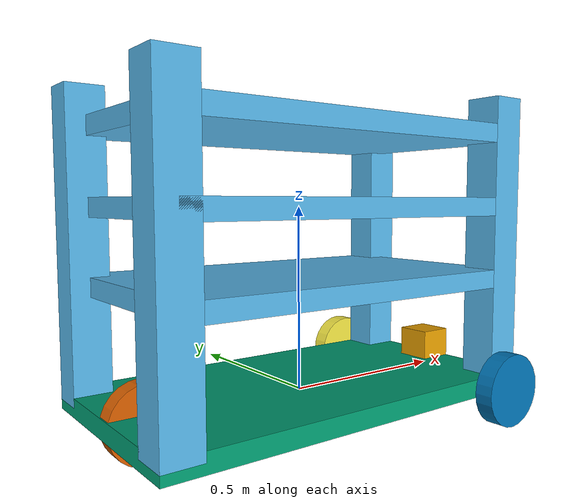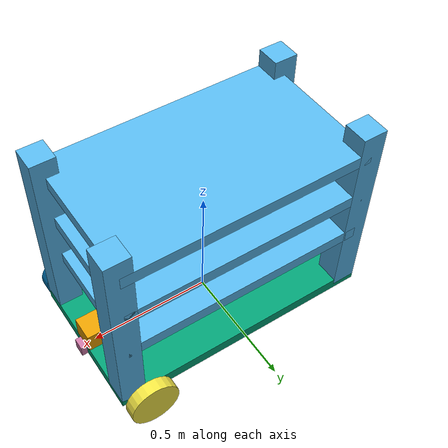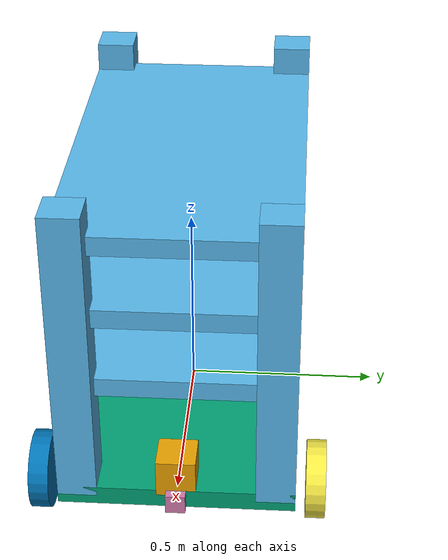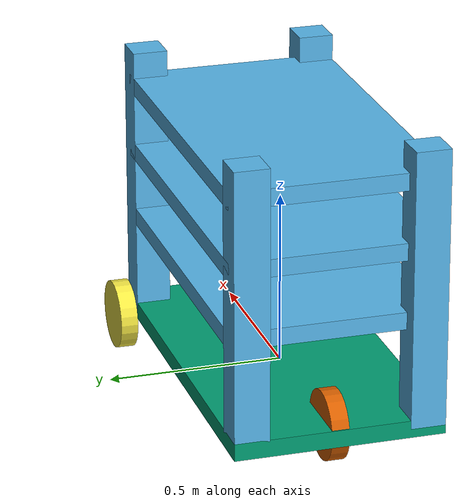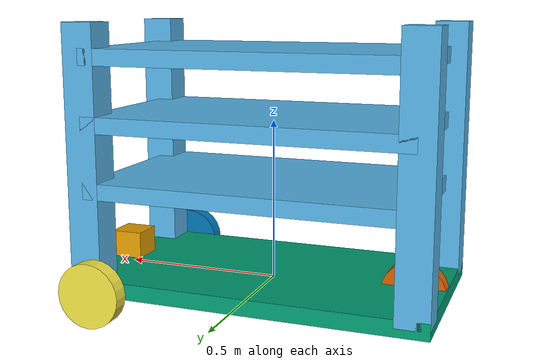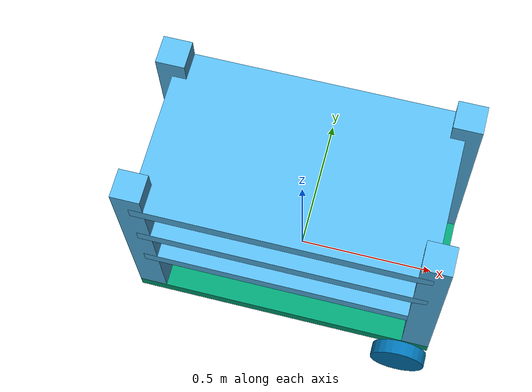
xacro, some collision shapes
<?xml version='1.0'?>

<robot name="my_robot" xmlns:xacro="http://www.ros.org/wiki/xacro">

  <xacro:include filename="$(find my_robot)/urdf/my_robot.gazebo" />
  <link name="robot_footprint"></link>

  <joint name="robot_footprint_joint" type="fixed">
    <origin xyz="0 0 0" rpy="0 0 0" />
    <parent link="robot_footprint"/>
    <child link="chassis" />
  </joint>

  <joint name="robot_footprint_joint2" type="fixed">
    <origin xyz="0 0 0" rpy="0 0 0" />
    <parent link="robot_footprint"/>
    <child link="cart_body" />
  </joint>

  <link name="cart_body">
    <pose> 0 0 0 0 0 0 </pose>
    <inertial>
      <mass value="5.0"/>
      <origin xyz="0 0 0" rpy=" 0 0 0"/>
      <inertia
          ixx="0.5" ixy="0" ixz="0"
          iyy="0.3" iyz="0"
          izz="0.4"
      />
    </inertial>
    <collision name='cart_collision'>
      <origin xyz="0 0 0.4" rpy=" 0 0 0"/>
      <geometry>
        <box size="1 0.6 0.8"/>
      </geometry>
    </collision>

    <visual name='cart_visual_button'>
      <origin xyz="0 0 0.3" rpy=" 0 0 0"/>
      <geometry>
        <box size="1 0.6 0.05"/>
      </geometry>
      <origin xyz="-0.5 -0.25 0" rpy=" 0 0 0"/>
    </visual>

    <visual name='cart_visual_middle'>
      <origin xyz="0 0 0.5" rpy=" 0 0 0"/>
      <geometry>
        <box size="1 0.6 0.05"/>
      </geometry>
    </visual>

    <visual name='cart_visual_top'>
      <origin xyz="0 0 0.7" rpy=" 0 0 0"/>
      <geometry>
        <box size="1 0.6 0.05"/>
      </geometry>
    </visual>

    <visual name='cart_visual_fl'>
      <origin xyz="0.5 0.25 0.4" rpy=" 0 0 0"/>
      <geometry>
        <box size="0.1 0.1 0.8"/>
      </geometry>
    </visual>

    <visual name='cart_visual_bl'>
      <origin xyz="-0.5 0.25 0.4" rpy=" 0 0 0"/>
      <geometry>
        <box size="0.1 0.1 0.8"/>
      </geometry>
    </visual>

    <visual name='cart_visual_fr'>
      <origin xyz="0.5 -0.25 0.4" rpy=" 0 0 0"/>
      <geometry>
        <box size="0.1 0.1 0.8"/>
      </geometry>
    </visual>

    <visual name='cart_visual_br'>
      <origin xyz="-0.5 -0.25 0.4" rpy=" 0 0 0"/>
      <geometry>
        <box size="0.1 0.1 0.8"/>
      </geometry>
    </visual>

  </link>

  <link name='chassis'>
    <pose>0 0 0.1 0 0 0</pose>

    <inertial>
      <mass value="5.0"/>
      <origin xyz="0.0 0 0" rpy=" 0 0 0"/>
      <inertia
          ixx="0.55" ixy="0" ixz="0"
          iyy="0.3" iyz="0"
          izz="0.025"
      />
    </inertial>

    <collision name='collision'>
      <origin xyz="0 0 0" rpy=" 0 0 0"/>
      <geometry>
        <box size="1.1 0.6 0.05"/>
      </geometry>
    </collision>

    <visual name='chassis_visual'>
      <origin xyz="0 0 0" rpy=" 0 0 0"/>
      <geometry>
        <box size="1.1 0.6 0.05"/>
      </geometry>
    </visual>

  </link>

  <link name='left_wheel'>

    <inertial>
      <mass value="0.2"/>
      <origin xyz="0.0 0 0" rpy=" 0 1.5707 1.5707"/>
      <inertia
          ixx="0.05" ixy="0" ixz="0"
          iyy="0.025" iyz="0"
          izz="0.05"
      />
    </inertial>

    <collision name='left_whee_collision'>
      <origin xyz="0 0 0" rpy="0 1.5707 1.5707"/>
      <geometry>
        <cylinder  radius="0.1" length="0.05"/>
      </geometry>
      <surface>
          <friction>
            <ode>
              <mu>1</mu>
              <mu2>1</mu2>
              <slip1>0.5</slip1>
              <slip2>0</slip2>
            </ode>
          </friction>
        </surface>
    </collision>

    <visual name='left_wheel_visual'>
      <origin xyz="0 0 0" rpy=" 0 1.5707 1.5707"/>
      <geometry>
        <cylinder  radius="0.1" length="0.05"/>
      </geometry>
    </visual>

  </link>

<link name='right_wheel'>

    <inertial>
      <mass value="0.2"/>
      <origin xyz="0.0 0 0" rpy=" 0 1.5707 1.5707"/>
      <inertia
          ixx="0.05" ixy="0" ixz="0"
          iyy="0.025" iyz="0"
          izz="0.05"
      />
    </inertial>

    <collision name='right_wheel_collision'>
      <origin xyz="0 0 0" rpy="0 1.5707 1.5707"/>
      <geometry>
        <cylinder  radius="0.1" length="0.05"/>
      </geometry>
      <surface>
          <friction>
            <ode>
              <mu>1</mu>
              <mu2>1</mu2>
              <slip1>0.5</slip1>
              <slip2>0</slip2>
            </ode>
          </friction>
        </surface>
    </collision>

    <visual name='right_wheel_visual'>
      <origin xyz="0 0 0" rpy=" 0 1.5707 1.5707"/>
      <geometry>
        <cylinder  radius="0.1" length="0.05"/>
      </geometry>
    </visual>

  </link>

<link name='back_left_wheel'>

    <inertial>
      <mass value="0.2"/>
      <origin xyz="0.0 0 0" rpy=" 0 1.5707 1.5707"/>
      <inertia
          ixx="0.05" ixy="0" ixz="0"
          iyy="0.025" iyz="0"
          izz="0.05"
      />
    </inertial>

    <collision name='back_left_whee_collision'>
      <origin xyz="0 0 0" rpy="0 1.5707 1.5707"/>
      <geometry>
        <cylinder  radius="0.1" length="0.05"/>
      </geometry>
      <surface>
          <friction>
            <ode>
              <mu>1</mu>
              <mu2>1</mu2>
              <slip1>0.5</slip1>
              <slip2>0</slip2>
            </ode>
          </friction>
        </surface>
    </collision>

    <visual name='back_left_wheel_visual'>
      <origin xyz="0 0 0" rpy=" 0 1.5707 1.5707"/>
      <geometry>
        <cylinder  radius="0.1" length="0.05"/>
      </geometry>
    </visual>

  </link>

  <joint type="continuous" name="left_wheel_hinge">
    <origin xyz="0.45 0.35 0" rpy="0 0 0"/>
    <child link="left_wheel"/>
    <parent link="chassis"/>
    <axis xyz="0 1 0" rpy="0 0 0"/>
    <limit effort="10000" velocity="1000"/>
    <dynamics damping="1.0" friction="1.0"/>
  </joint>

  <joint type="continuous" name="right_wheel_hinge">
    <origin xyz="0.45 -0.35 0" rpy="0 0 0"/>
    <child link="right_wheel"/>
    <parent link="chassis"/>
    <axis xyz="0 1 0" rpy="0 0 0"/>
    <limit effort="10000" velocity="1000"/>
    <dynamics damping="1.0" friction="1.0"/>
  </joint>

  <joint type="continuous" name="back_left_wheel_hinge">
    <origin xyz="-0.45 0.0 0" rpy="0 0 0"/>
    <child link="back_left_wheel"/>
    <parent link="chassis"/>
    <axis xyz="0 1 0" rpy="0 0 0"/>
    <limit effort="10000" velocity="1000"/>
    <dynamics damping="1.0" friction="1.0"/>
  </joint>

  <link name='camera'>

    <inertial>
      <mass value="0.1"/>
      <origin xyz="0.0 0 0" rpy=" 0 0 0"/>
      <box_inertia
      m="0.1" x="0.05" y="0.05" z="0.05"
      />
      <inertia
          ixx="1e-6" ixy="0" ixz="0"
          iyy="1e-6" iyz="0"
          izz="1e-6"
      />
    </inertial>

    <collision name='camera_collision'>
      <origin xyz="0.0 0 0" rpy=" 0 0 0"/>
      <geometry>
        <box  size="0.05 0.05 0.05"/>
      </geometry>
    </collision>

    <visual name='camera_visual'>
      <origin xyz="0.0 0 0" rpy=" 0 0 0"/>
      <geometry>
        <box  size="0.05 0.05 0.05"/>
      </geometry>
    </visual>

  </link>

  <joint type="fixed" name="camera_joint">
    <origin xyz="0.55 0 0" rpy="0 0 0"/>
    <child link="camera"/>
    <parent link="chassis"/>
    <axis xyz="0 1 0" rpy="0 0 0"/>
  </joint>

  <joint name="camera_optical_joint" type="fixed">
    <origin xyz="0 0 0" rpy="-1.5707 0 -1.5707"/>
    <parent link="camera"/>
    <child link="camera_link_optical"/>
  </joint>

  <link name="camera_link_optical">
  </link>

<link name='hokuyo'>

    <inertial>
      <mass value="1e-5"/>
      <origin xyz="0.0 0 0" rpy=" 0 0 0"/>
      <box_inertia
      m="0.1" x="0.05" y="0.05" z="0.05"
      />
      <inertia
          ixx="1e-6" ixy="0" ixz="0"
          iyy="1e-6" iyz="0"
          izz="1e-6"
      />
    </inertial>

    <collision name='hokuyo_collision'>
      <origin xyz="0.0 0 0" rpy=" 0 0 0"/>
      <geometry>
        <box  size="0.1 0.1 0.1"/>
      </geometry>
    </collision>

    <visual name='hokuyo_visual'>
      <origin xyz="0.0 0 0" rpy=" 0 0 0"/>
      <geometry>
        <mesh filename="package://my_robot/meshes/hokuyo.dae"/>
      </geometry>
    </visual>

  </link>

  <joint type="fixed" name="hokuyo_joint">
    <origin xyz="0.5 0 .06" rpy="0 0 0"/>
    <child link="hokuyo"/>
    <parent link="chassis"/>
    <axis xyz="0 1 0" rpy="0 0 0"/>
  </joint>

</robot>
